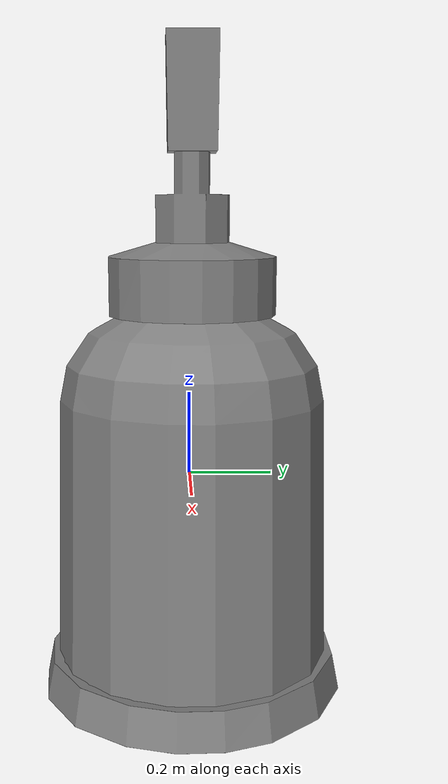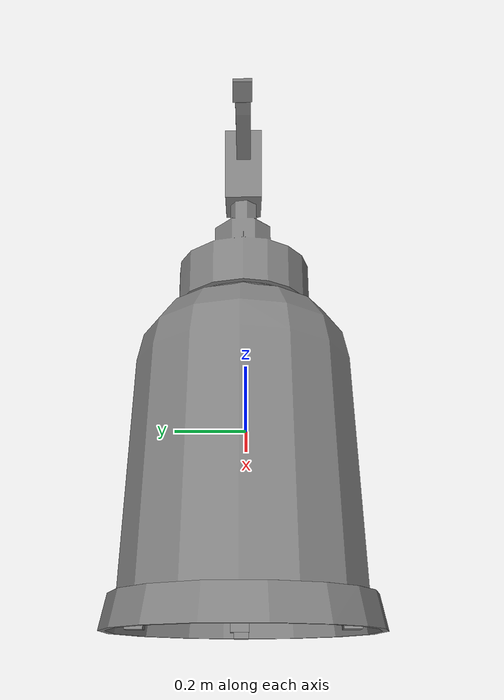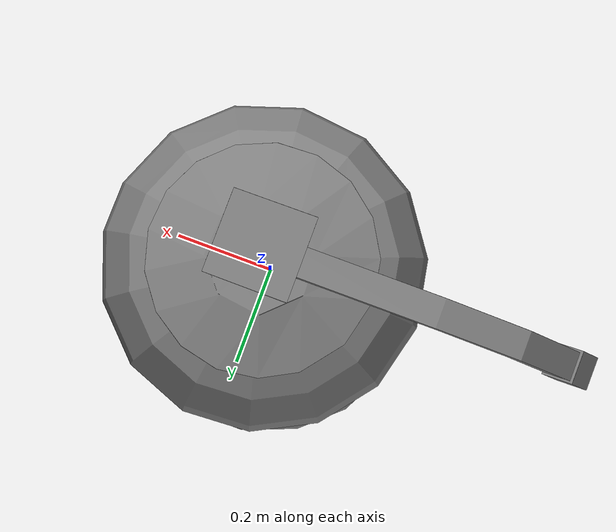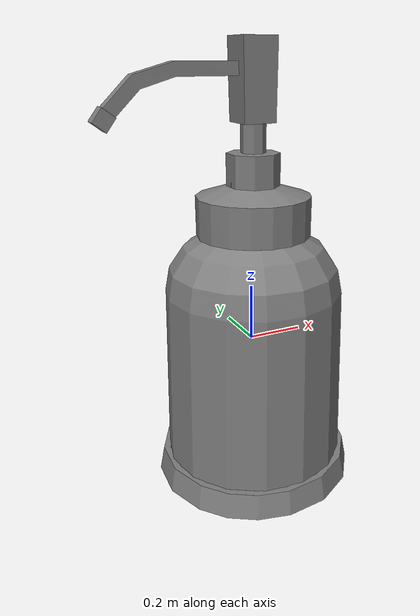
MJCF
<?xml version='1.0' encoding='UTF-8'?>
<mujoco model="partnet_cdc1cdb6-f4af-451c-a789-179ac53f8e0b">
  <compiler angle="radian"/>
  <asset>
    <mesh name="original_8" content_type="model/obj" file="textured_objs/original_8.obj"/>
    <mesh name="original_10" content_type="model/obj" file="textured_objs/original_10.obj"/>
    <mesh name="original_11" content_type="model/obj" file="textured_objs/original_11.obj"/>
    <mesh name="original_6" content_type="model/obj" file="textured_objs/original_6.obj"/>
    <mesh name="original_21" content_type="model/obj" file="textured_objs/original_21.obj"/>
    <mesh name="original_4" content_type="model/obj" file="textured_objs/original_4.obj"/>
    <mesh name="original_3" content_type="model/obj" file="textured_objs/original_3.obj"/>
    <mesh name="original_2" content_type="model/obj" file="textured_objs/original_2.obj"/>
    <mesh name="original_15" content_type="model/obj" file="textured_objs/original_15.obj"/>
    <mesh name="original_18" content_type="model/obj" file="textured_objs/original_18.obj"/>
    <mesh name="original_17" content_type="model/obj" file="textured_objs/original_17.obj"/>
    <mesh name="original_12" content_type="model/obj" file="textured_objs/original_12.obj"/>
    <mesh name="original_20" content_type="model/obj" file="textured_objs/original_20.obj"/>
    <mesh name="original_7" content_type="model/obj" file="textured_objs/original_7.obj"/>
    <mesh name="original_1" content_type="model/obj" file="textured_objs/original_1.obj"/>
    <mesh name="original_14" content_type="model/obj" file="textured_objs/original_14.obj"/>
  </asset>
  <worldbody>
    <body name="base">
      <body name="link_2" quat="0.5 0.5 -0.5 -0.5">
        <geom type="mesh" mesh="original_21"/>
        <geom type="mesh" mesh="original_4"/>
        <geom type="mesh" mesh="original_3"/>
        <geom type="mesh" mesh="original_2"/>
        <geom type="mesh" mesh="original_15"/>
        <geom type="mesh" mesh="original_18"/>
        <geom type="mesh" mesh="original_17"/>
        <geom type="mesh" mesh="original_12"/>
        <geom type="mesh" mesh="original_20"/>
        <geom type="mesh" mesh="original_7"/>
        <geom type="mesh" mesh="original_1"/>
        <geom type="mesh" mesh="original_14"/>
        <body name="link_1_helper" pos="-0.00519755 0 -0.0117094">
          <inertial pos="0 0 0" mass="1e-06" diaginertia="1e-10 1e-10 1e-10"/>
          <joint name="joint_4" pos="0 0 0" axis="0 1 0" type="slide" range="0 0.128"/>
          <body name="link_1">
            <joint name="joint_1" pos="0 0 0" axis="0 -1 0"/>
            <geom pos="0.00519755 0 0.0117094" quat="1 0 0 0" type="mesh" mesh="original_6"/>
            <body name="link_0_helper" pos="-0.00126889 0 0.00139747">
              <inertial pos="0 0 0" mass="1e-06" diaginertia="1e-10 1e-10 1e-10"/>
              <joint name="joint_3" pos="0 0 0" axis="0 -1 0" type="slide" range="0 0.1"/>
              <body name="link_0">
                <joint name="joint_0" pos="0 0 0" axis="0 1 0"/>
                <geom pos="0.00646645 0 0.0103119" quat="1 0 0 0" type="mesh" mesh="original_8"/>
                <geom pos="0.00646645 0 0.0103119" type="mesh" mesh="original_10"/>
                <geom pos="0.00646645 0 0.0103119" quat="1 0 0 0" type="mesh" mesh="original_11"/>
              </body>
            </body>
          </body>
        </body>
      </body>
    </body>
  </worldbody>
</mujoco>
